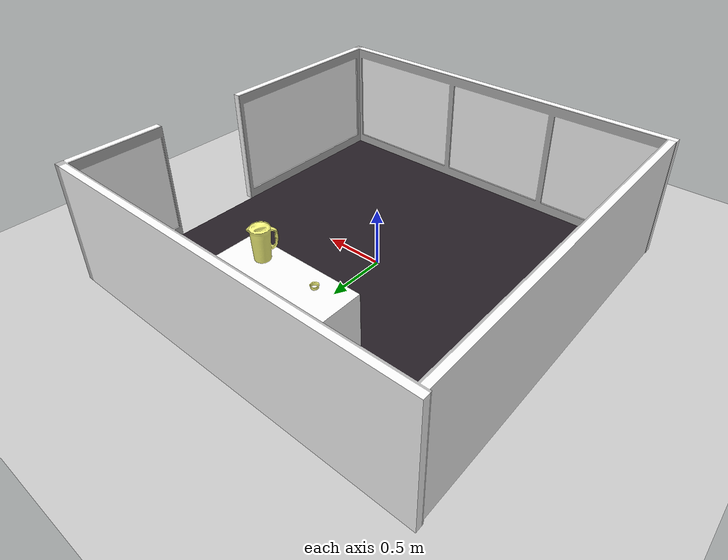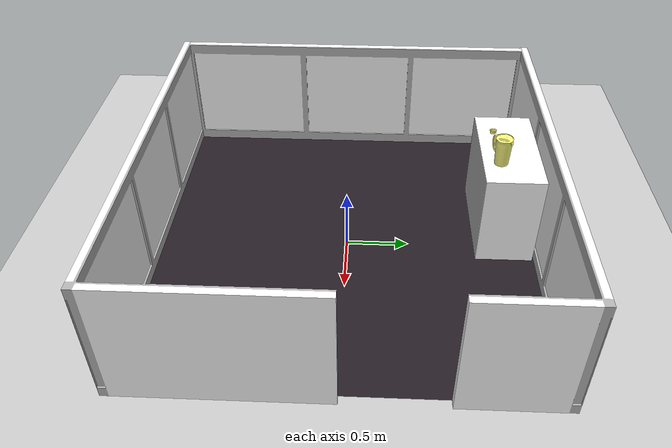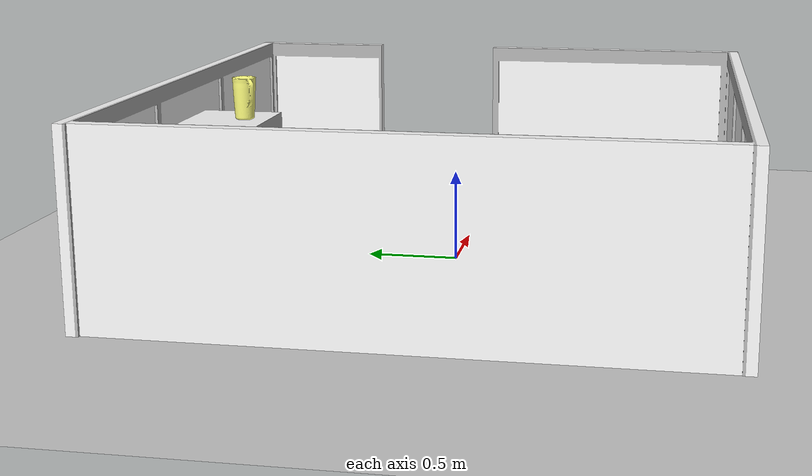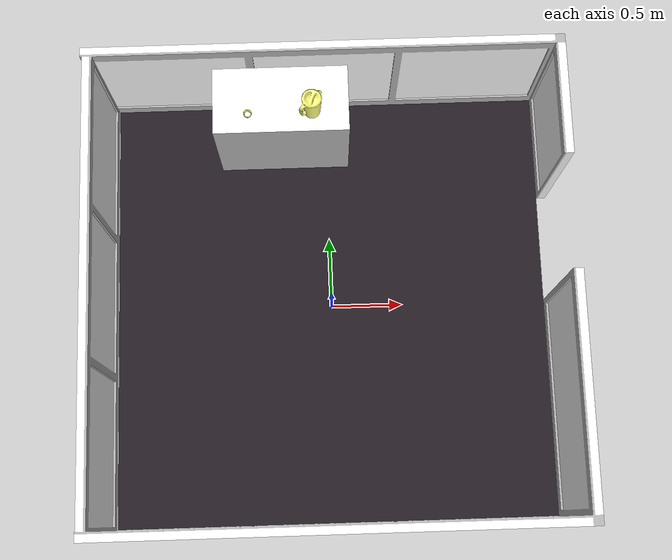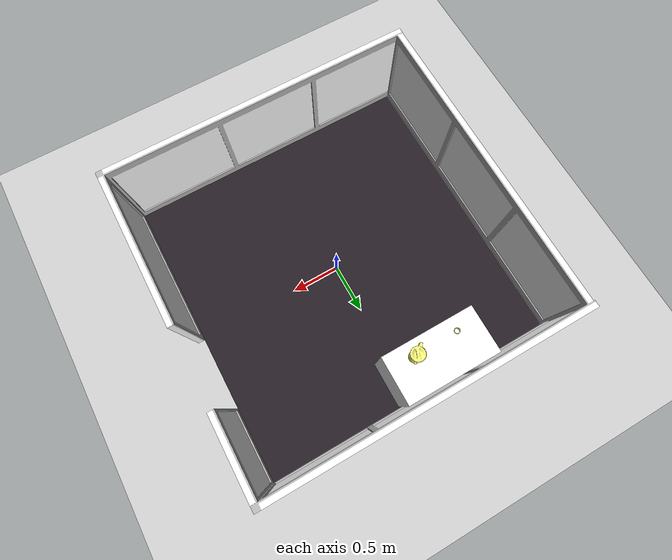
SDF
<?xml version="1.0" ?>
<sdf version="1.4">
  <world name="default">

    <include>
      <uri>model://ground_plane</uri>
      <pose>0 0 -0.005 0 0 0</pose>
    </include>

    <include>
      <uri>model://fetchit_arena</uri>
      <name>fetchit_arena1</name>
      <pose>0 0 0 0 0 0</pose>
    </include>

    <include>
      <uri>model://fetchit_table_sick</uri>
      <name>fetchit_table_sick1</name>
      <pose>-0.305 1.28179 0.0 0 0 0</pose>
    </include>

    <include>
      <uri>model://cup_a</uri>
      <name>cup_a</name>
      <pose>-0.527621 1.178772 0.776483 0 0 3.105351</pose>
    </include>

    <include>
      <uri>model://pitcher_base</uri>
      <name>pitcher_base</name>
      <pose>-0.093813 1.189535 0.813011 0 0 3.105351</pose>
    </include>

    <light name='user_point_light_0' type='point'>
      <pose frame=''>1.0 1.0 3.5 0 0 0</pose>
      <diffuse>0.7 0.7 0.7 1</diffuse>
      <specular>0.1 0.1 0.1 1</specular>
      <attenuation>
        <range>10</range>
        <constant>0.5</constant>
        <linear>0.01</linear>
        <quadratic>0.001</quadratic>
      </attenuation>
      <cast_shadows>0</cast_shadows>
      <direction>0 0 -1</direction>
    </light>

    <light name='user_point_light_1' type='point'>
      <pose frame=''>-1.0 1.0 3.5 0 0 0</pose>
      <diffuse>0.7 0.7 0.7 1</diffuse>
      <specular>0.1 0.1 0.1 1</specular>
      <attenuation>
        <range>10</range>
        <constant>0.5</constant>
        <linear>0.01</linear>
        <quadratic>0.001</quadratic>
      </attenuation>
      <cast_shadows>0</cast_shadows>
      <direction>0 0 -1</direction>
    </light>

    <light name='user_point_light_2' type='point'>
      <pose frame=''>-1.0 -1.0 3.5 0 0 0</pose>
      <diffuse>0.7 0.7 0.7 1</diffuse>
      <specular>0.1 0.1 0.1 1</specular>
      <attenuation>
        <range>10</range>
        <constant>0.5</constant>
        <linear>0.01</linear>
        <quadratic>0.001</quadratic>
      </attenuation>
      <cast_shadows>0</cast_shadows>
      <direction>0 0 -1</direction>
    </light>

    <light name='user_point_light_3' type='point'>
      <pose frame=''>1.0 -1.0 3.5 0 0 0</pose>
      <diffuse>0.7 0.7 0.7 1</diffuse>
      <specular>0.1 0.1 0.1 1</specular>
      <attenuation>
        <range>10</range>
        <constant>0.5</constant>
        <linear>0.01</linear>
        <quadratic>0.001</quadratic>
      </attenuation>
      <cast_shadows>0</cast_shadows>
      <direction>0 0 -1</direction>
    </light>

  </world>
</sdf>

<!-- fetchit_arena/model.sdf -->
<sdf version='1.4'>
  <model name="fetchit_simple_env">
      <static>1</static>
      <link name='link'>
        <visual name='visual'>
          <geometry>
            <mesh>
              <uri>model://fetchit_arena/meshes/fetchit_arena1.dae</uri>
              <scale>1 1 1</scale>
            </mesh>
          </geometry>
        </visual>
        <collision name='collision'>
          <geometry>
            <mesh>
              <uri>model://fetchit_arena/meshes/fetchit_arena1.dae</uri>
              <scale>1 1 1</scale>
            </mesh>
          </geometry>
          <surface>
            <friction>
              <ode>
                <mu>30.0</mu>
                <mu2>30.0</mu2>
              </ode>
            </friction>
            <contact>
              <ode>
                <soft_cfm>0</soft_cfm>
    	          <soft_erp>0.2</soft_erp>
    	          <kp>1e+13</kp>
    	          <kd>1</kd>
    	          <max_vel>0.01</max_vel>
    	          <min_depth>0</min_depth>
              </ode>
            </contact>
          </surface>
        </collision>
        <velocity_decay>
          <linear>0.000000</linear>
          <angular>0.000000</angular>
        </velocity_decay>
        <self_collide>0</self_collide>
        <kinematic>0</kinematic>
        <gravity>1</gravity>
      </link>
  </model>
</sdf>

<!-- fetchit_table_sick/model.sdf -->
<sdf version='1.4'>
  <model name="fetchit_table_sick">
      <static>1</static>
      <link name='link'>
        <inertial>
          <mass>0.0592855</mass>
          <inertia>
            <ixx>2.31818050784e-05</ixx>
            <ixy>0.000000</ixy>
            <ixz>0.000000</ixz>
            <iyy>2.31851837098e-05</iyy>
            <iyz>0.000000</iyz>
            <izz>8.88944636856e-06</izz>
          </inertia>
        </inertial>
        <collision name='collision'>
          <geometry>
            <mesh>
              <uri>model://fetchit_table_sick/meshes/simple_table.stl</uri>
              <scale>1 1 1</scale>
            </mesh>
          </geometry>
          <surface>
            <friction>
              <ode>
                <mu>30.0</mu>
                <mu2>30.0</mu2>
              </ode>
            </friction>
          </surface>
        </collision>
        <visual name='visual'>
          <geometry>
            <mesh>
              <uri>model://fetchit_table_sick/meshes/table_sick.dae</uri>
              <scale>1 1 1</scale>
            </mesh>
          </geometry>
        </visual>
        <velocity_decay>
          <linear>0.000000</linear>
          <angular>0.000000</angular>
        </velocity_decay>
        <self_collide>0</self_collide>
        <kinematic>0</kinematic>
        <gravity>1</gravity>
      </link>
  </model>
</sdf>

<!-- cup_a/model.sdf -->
<sdf version='1.4'>
  <model name="cup_a">
      <static>0</static>
      <link name='link'>
        <inertial>
          <!-- Empty Weight = 32g -> 0.032, full weight (marbles) 206g ->.206-->
          <mass>0.032</mass>
          <inertia>
            <ixx>1.291e-7</ixx>
            <ixy>-1e-9</ixy>
            <ixz>2e-9</ixz>
            <iyy>1.272e-7</iyy>
            <iyz>5.2e-9</iyz>
            <izz>1.086e-7</izz>
          </inertia>
        </inertial>
        <collision name='collision'>
          <geometry>
            <mesh>
              <uri>model://cup_a/meshes/cup_a.stl</uri>
              <scale>1 1 1</scale>
            </mesh>
          </geometry>
          <surface>
            <friction>
              <ode>
                <mu>30.0</mu>
                <mu2>30.0</mu2>
              </ode>
            </friction>
          </surface>
        </collision>
        <visual name='visual'>
          <geometry>
            <mesh>
              <uri>model://cup_a/meshes/cup_a.dae</uri>
              <scale>1 1 1</scale>
            </mesh>
          </geometry>
          <material>
            <diffuse>1 1 0.5 1</diffuse>
          </material>
        </visual>
        <velocity_decay>
          <linear>0.000000</linear>
          <angular>0.000000</angular>
        </velocity_decay>
        <self_collide>0</self_collide>
        <kinematic>0</kinematic>
        <gravity>1</gravity>
      </link>
  </model>
</sdf>

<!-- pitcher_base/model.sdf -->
<sdf version='1.4'>
  <model name="pitcher_base">
      <static>0</static>
      <link name='link'>
        <inertial>
          <!-- Weight = 184g -> 0.184-->
          <mass>0.184</mass>
          <inertia>
            <ixx>0.000013</ixx>
            <ixy>0.000000</ixy>
            <ixz>0.000000</ixz>
            <iyy>0.0</iyy>
            <iyz>0.000013</iyz>
            <izz>0.00018046111</izz>
          </inertia>
        </inertial>
        <collision name='collision'>
          <geometry>
            <mesh>
              <uri>model://pitcher_base/meshes/pitcher_base.stl</uri>
              <scale>1 1 1</scale>
            </mesh>
          </geometry>
          <surface>
            <friction>
              <ode>
                <mu>30.0</mu>
                <mu2>30.0</mu2>
              </ode>
            </friction>
          </surface>
        </collision>
        <visual name='visual'>
          <geometry>
            <mesh>
              <uri>model://pitcher_base/meshes/pitcher_base.dae</uri>
              <scale>1 1 1</scale>
            </mesh>
          </geometry>
          <material>
            <diffuse>1 1 0.5 1</diffuse>
          </material>
        </visual>
        <velocity_decay>
          <linear>0.000000</linear>
          <angular>0.000000</angular>
        </velocity_decay>
        <self_collide>0</self_collide>
        <kinematic>0</kinematic>
        <gravity>1</gravity>
      </link>
  </model>
</sdf>
